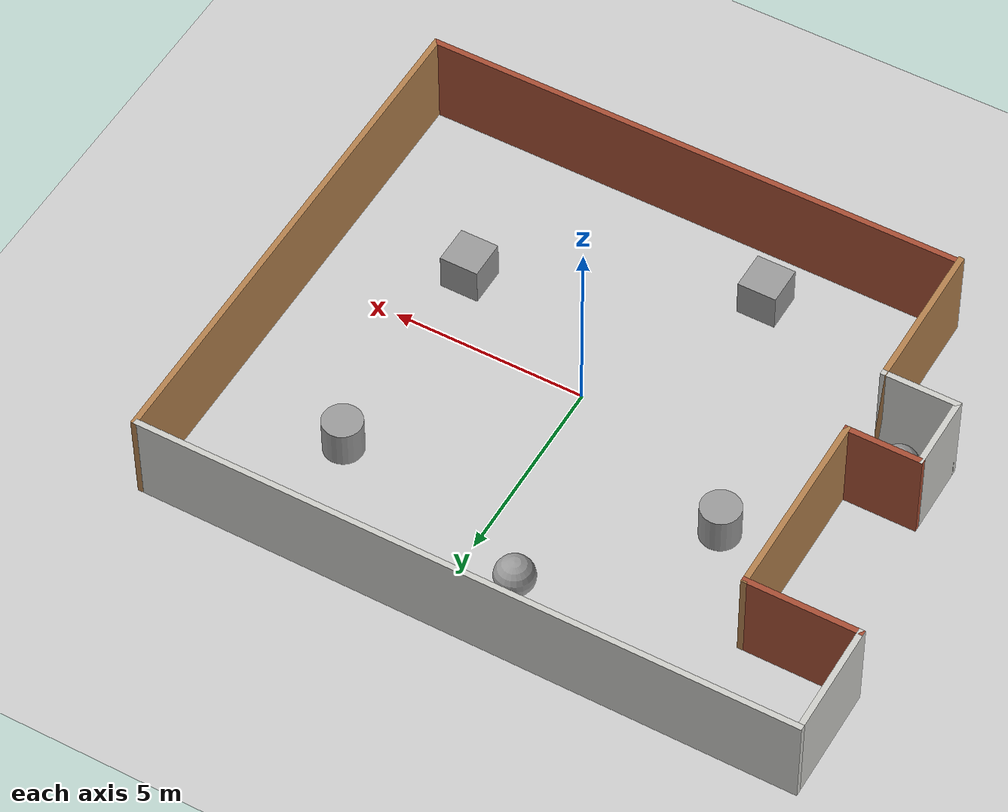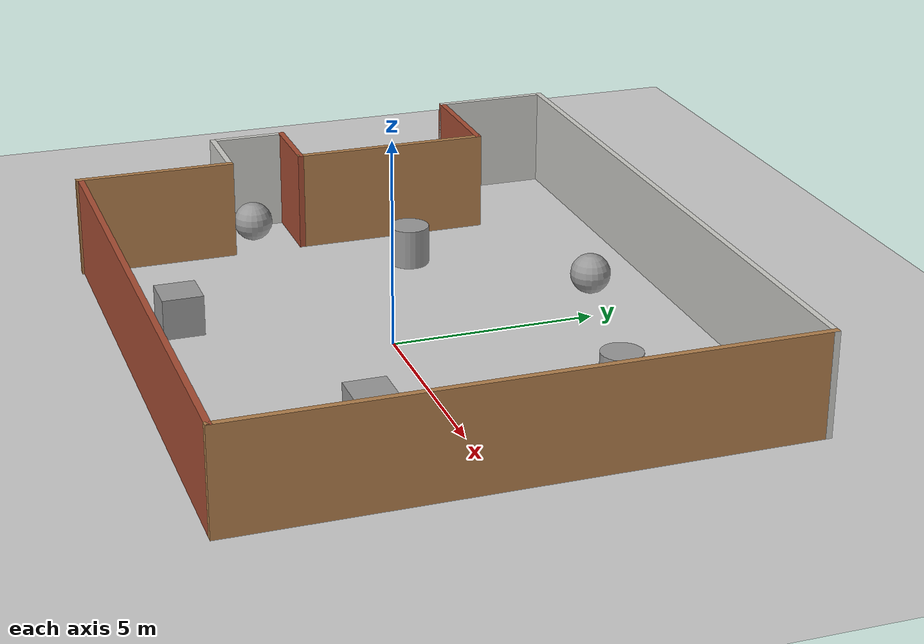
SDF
<sdf version="1.7">
 <world name="default">
  <light name="sun" type="directional">
   <pose>0 0 10 0 -0 0</pose>
   <diffuse>0.8 0.8 0.8 1</diffuse>
   <specular>0.2 0.2 0.2 1</specular>
   <attenuation>
    <range>1000</range>
    <constant>0.9</constant>
    <linear>0.01</linear>
    <quadratic>0.001</quadratic>
   </attenuation>
   <direction>-0.5 0.1 -0.9</direction>
   <spot><inner_angle>0</inner_angle><outer_angle>0</outer_angle><falloff>0</falloff></spot>
  </light>
  <model name="ground_plane">
   <static>1</static>
   <link name="link">
    <collision name="collision">
     <geometry><plane><normal>0 0 1</normal><size>100 100</size></plane></geometry>
     <surface>
      <contact><collide_bitmask>65535</collide_bitmask></contact>
      <friction><ode><mu>100</mu><mu2>50</mu2></ode></friction>
     </surface>
    </collision>
    <visual name="visual">
     <cast_shadows>0</cast_shadows>
     <geometry><plane><normal>0 0 1</normal><size>100 100</size></plane></geometry>
     <material>
      <script><uri>file://media/materials/scripts/gazebo.material</uri><name>Gazebo/Grey</name></script>
     </material>
    </visual>
   </link>
  </model>
  <gravity>0 0 -9.8</gravity>
  <magnetic_field>6e-06 2.3e-05 -4.2e-05</magnetic_field>
  <atmosphere type="adiabatic"/>
  <physics type="ode">
   <max_step_size>0.001</max_step_size>
   <real_time_factor>1</real_time_factor>
   <real_time_update_rate>1000</real_time_update_rate>
  </physics>
  <scene><ambient>0.4 0.4 0.4 1</ambient><background>0.7 0.7 0.7 1</background><shadows>1</shadows></scene>
  <spherical_coordinates>
   <surface_model>EARTH_WGS84</surface_model>
   <latitude_deg>0</latitude_deg>
   <longitude_deg>0</longitude_deg>
   <elevation>0</elevation>
   <heading_deg>0</heading_deg>
  </spherical_coordinates>
  <model name="Untitled">
   <pose>-1.005 0.610001 0 0 -0 0</pose>
   <link name="Wall_0">
    <collision name="Wall_0_Collision">
     <geometry><box><size>14 0.15 2.5</size></box></geometry>
     <pose>0 0 1.25 0 -0 0</pose>
    </collision>
    <visual name="Wall_0_Visual">
     <pose>0 0 1.25 0 -0 0</pose>
     <geometry><box><size>14 0.15 2.5</size></box></geometry>
     <material>
      <script><uri>file://media/materials/scripts/gazebo.material</uri><name>Gazebo/Bricks</name></script>
      <ambient>1 1 1 1</ambient>
     </material>
     <meta><layer>0</layer></meta>
    </visual>
    <pose>1.5 -6.65 0 0 -0 0</pose>
   </link>
   <link name="Wall_1">
    <collision name="Wall_1_Collision">
     <geometry><box><size>13.5 0.15 2.5</size></box></geometry>
     <pose>0 0 1.25 0 -0 0</pose>
    </collision>
    <visual name="Wall_1_Visual">
     <pose>0 0 1.25 0 -0 0</pose>
     <geometry><box><size>13.5 0.15 2.5</size></box></geometry>
     <material>
      <script><uri>file://media/materials/scripts/gazebo.material</uri><name>Gazebo/Wood</name></script>
      <ambient>1 1 1 1</ambient>
     </material>
     <meta><layer>0</layer></meta>
    </visual>
    <pose>8.425 0.024999 0 0 -0 1.5708</pose>
   </link>
   <link name="Wall_15">
    <collision name="Wall_15_Collision">
     <geometry><box><size>4 0.15 2.5</size></box></geometry>
     <pose>0 0 1.25 0 -0 0</pose>
    </collision>
    <visual name="Wall_15_Visual">
     <pose>0 0 1.25 0 -0 0</pose>
     <geometry><box><size>4 0.15 2.5</size></box></geometry>
     <material>
      <script><uri>file://media/materials/scripts/gazebo.material</uri><name>Gazebo/Wood</name></script>
      <ambient>1 1 1 1</ambient>
     </material>
     <meta><layer>0</layer></meta>
    </visual>
    <pose>-5.575 -4.775 0 0 -0 -1.5708</pose>
   </link>
   <link name="Wall_2">
    <collision name="Wall_2_Collision">
     <geometry><box><size>17 0.15 2.5</size></box></geometry>
     <pose>0 0 1.25 0 -0 0</pose>
    </collision>
    <visual name="Wall_2_Visual">
     <pose>0 0 1.25 0 -0 0</pose>
     <geometry><box><size>17 0.15 2.5</size></box></geometry>
     <material>
      <script><uri>file://media/materials/scripts/gazebo.material</uri><name>Gazebo/CeilingTiled</name></script>
      <ambient>0.435294 0.796078 0.67451 1</ambient>
     </material>
     <meta><layer>0</layer></meta>
    </visual>
    <pose>-0 6.7 0 0 -0 3.14159</pose>
   </link>
   <link name="Wall_3">
    <collision name="Wall_3_Collision">
     <geometry><box><size>3 0.15 2.5</size></box></geometry>
     <pose>0 0 1.25 0 -0 0</pose>
    </collision>
    <visual name="Wall_3_Visual">
     <pose>0 0 1.25 0 -0 0</pose>
     <geometry><box><size>3 0.15 2.5</size></box></geometry>
     <material>
      <script><uri>file://media/materials/scripts/gazebo.material</uri><name>Gazebo/CeilingTiled</name></script>
      <ambient>1 1 1 1</ambient>
     </material>
     <meta><layer>0</layer></meta>
    </visual>
    <pose>-8.425 5.275 0 0 -0 -1.5708</pose>
   </link>
   <link name="Wall_4">
    <collision name="Wall_4_Collision">
     <geometry><box><size>3 0.15 2.5</size></box></geometry>
     <pose>0 0 1.25 0 -0 0</pose>
    </collision>
    <visual name="Wall_4_Visual">
     <pose>0 0 1.25 0 -0 0</pose>
     <geometry><box><size>3 0.15 2.5</size></box></geometry>
     <material>
      <script><uri>file://media/materials/scripts/gazebo.material</uri><name>Gazebo/Bricks</name></script>
      <ambient>1 1 1 1</ambient>
     </material>
     <meta><layer>0</layer></meta>
    </visual>
    <pose>-7 3.85 0 0 -0 0</pose>
   </link>
   <link name="Wall_5">
    <collision name="Wall_5_Collision">
     <geometry><box><size>5 0.15 2.5</size></box></geometry>
     <pose>0 0 1.25 0 -0 0</pose>
    </collision>
    <visual name="Wall_5_Visual">
     <pose>0 0 1.25 0 -0 0</pose>
     <geometry><box><size>5 0.15 2.5</size></box></geometry>
     <material>
      <script><uri>file://media/materials/scripts/gazebo.material</uri><name>Gazebo/Wood</name></script>
      <ambient>1 1 1 1</ambient>
     </material>
     <meta><layer>0</layer></meta>
    </visual>
    <pose>-5.575 1.425 0 0 -0 -1.5708</pose>
   </link>
   <link name="Wall_6">
    <collision name="Wall_6_Collision">
     <geometry><box><size>2 0.15 2.5</size></box></geometry>
     <pose>0 0 1.25 0 -0 0</pose>
    </collision>
    <visual name="Wall_6_Visual">
     <pose>0 0 1.25 0 -0 0</pose>
     <geometry><box><size>2 0.15 2.5</size></box></geometry>
     <material>
      <script><uri>file://media/materials/scripts/gazebo.material</uri><name>Gazebo/Bricks</name></script>
      <ambient>1 1 1 1</ambient>
     </material>
     <meta><layer>0</layer></meta>
    </visual>
    <pose>-6.5 -1 0 0 -0 3.14159</pose>
   </link>
   <link name="Wall_7">
    <collision name="Wall_7_Collision">
     <geometry><box><size>2 0.15 2.5</size></box></geometry>
     <pose>0 0 1.25 0 -0 0</pose>
    </collision>
    <visual name="Wall_7_Visual">
     <pose>0 0 1.25 0 -0 0</pose>
     <geometry><box><size>2 0.15 2.5</size></box></geometry>
     <material>
      <script><uri>file://media/materials/scripts/gazebo.material</uri><name>Gazebo/CeilingTiled</name></script>
      <ambient>1 1 1 1</ambient>
     </material>
     <meta><layer>0</layer></meta>
    </visual>
    <pose>-7.425 -1.925 0 0 -0 -1.5708</pose>
   </link>
   <link name="Wall_8">
    <collision name="Wall_8_Collision">
     <geometry><box><size>2 0.15 2.5</size></box></geometry>
     <pose>0 0 1.25 0 -0 0</pose>
    </collision>
    <visual name="Wall_8_Visual">
     <pose>0 0 1.25 0 -0 0</pose>
     <geometry><box><size>2 0.15 2.5</size></box></geometry>
     <material>
      <script><uri>file://media/materials/scripts/gazebo.material</uri><name>Gazebo/CeilingTiled</name></script>
      <ambient>1 1 1 1</ambient>
     </material>
     <meta><layer>0</layer></meta>
    </visual>
    <pose>-6.5 -2.85 0 0 -0 0</pose>
   </link>
   <static>1</static>
  </model>
  <model name="unit_cylinder">
   <pose>-4.66761 1.9273 0.499998 3e-06 -4e-06 0</pose>
   <link name="link">
    <inertial>
     <mass>1</mass>
     <inertia><ixx>0.145833</ixx><ixy>0</ixy><ixz>0</ixz><iyy>0.145833</iyy><iyz>0</iyz><izz>0.125</izz></inertia>
    </inertial>
    <collision name="collision">
     <geometry><cylinder><radius>0.5</radius><length>1</length></cylinder></geometry>
    </collision>
    <visual name="visual">
     <geometry><cylinder><radius>0.5</radius><length>1</length></cylinder></geometry>
     <material>
      <script><name>Gazebo/Grey</name><uri>file://media/materials/scripts/gazebo.material</uri></script>
     </material>
    </visual>
   </link>
  </model>
  <model name="unit_cylinder_0">
   <pose>4.04161 4.01063 0.499992 -3e-06 -4e-06 -0</pose>
   <link name="link">
    <inertial>
     <mass>1</mass>
     <inertia><ixx>0.145833</ixx><ixy>0</ixy><ixz>0</ixz><iyy>0.145833</iyy><iyz>0</iyz><izz>0.125</izz></inertia>
    </inertial>
    <collision name="collision">
     <geometry><cylinder><radius>0.5</radius><length>1</length></cylinder></geometry>
    </collision>
    <visual name="visual">
     <geometry><cylinder><radius>0.5</radius><length>1</length></cylinder></geometry>
     <material>
      <script><name>Gazebo/Grey</name><uri>file://media/materials/scripts/gazebo.material</uri></script>
     </material>
    </visual>
   </link>
  </model>
  <model name="unit_box">
   <pose>4.06135 -1.78763 0.499995 -1e-05 -0 -0</pose>
   <link name="link">
    <inertial>
     <mass>1</mass>
     <inertia>
      <ixx>0.166667</ixx>
      <ixy>0</ixy>
      <ixz>0</ixz>
      <iyy>0.166667</iyy>
      <iyz>0</iyz>
      <izz>0.166667</izz>
     </inertia>
    </inertial>
    <collision name="collision"><geometry><box><size>1 1 1</size></box></geometry></collision>
    <visual name="visual">
     <geometry><box><size>1 1 1</size></box></geometry>
     <material>
      <script><name>Gazebo/Grey</name><uri>file://media/materials/scripts/gazebo.material</uri></script>
     </material>
    </visual>
   </link>
  </model>
  <model name="unit_sphere">
   <pose>-7.46931 -1.46876 0.5 0 -0 0</pose>
   <link name="link">
    <inertial>
     <mass>1</mass>
     <inertia><ixx>0.1</ixx><ixy>0</ixy><ixz>0</ixz><iyy>0.1</iyy><iyz>0</iyz><izz>0.1</izz></inertia>
    </inertial>
    <collision name="collision"><geometry><sphere><radius>0.5</radius></sphere></geometry></collision>
    <visual name="visual">
     <geometry><sphere><radius>0.5</radius></sphere></geometry>
     <material>
      <script><name>Gazebo/Grey</name><uri>file://media/materials/scripts/gazebo.material</uri></script>
     </material>
    </visual>
   </link>
  </model>
  <model name="unit_sphere_0">
   <pose>-1.38907 5.55709 0.5 0 -0 0</pose>
   <link name="link">
    <inertial>
     <mass>1</mass>
     <inertia><ixx>0.1</ixx><ixy>0</ixy><ixz>0</ixz><iyy>0.1</iyy><iyz>0</iyz><izz>0.1</izz></inertia>
    </inertial>
    <collision name="collision"><geometry><sphere><radius>0.5</radius></sphere></geometry></collision>
    <visual name="visual">
     <geometry><sphere><radius>0.5</radius></sphere></geometry>
     <material>
      <script><name>Gazebo/Grey</name><uri>file://media/materials/scripts/gazebo.material</uri></script>
     </material>
    </visual>
   </link>
  </model>
  <model name="unit_box_0">
   <pose>-2.40232 -4.54347 0.5 0 -0 0</pose>
   <link name="link">
    <inertial>
     <mass>1</mass>
     <inertia>
      <ixx>0.166667</ixx>
      <ixy>0</ixy>
      <ixz>0</ixz>
      <iyy>0.166667</iyy>
      <iyz>0</iyz>
      <izz>0.166667</izz>
     </inertia>
    </inertial>
    <collision name="collision"><geometry><box><size>1 1 1</size></box></geometry></collision>
    <visual name="visual">
     <geometry><box><size>1 1 1</size></box></geometry>
     <material>
      <script><name>Gazebo/Grey</name><uri>file://media/materials/scripts/gazebo.material</uri></script>
     </material>
    </visual>
   </link>
  </model>
 </world>
</sdf>
